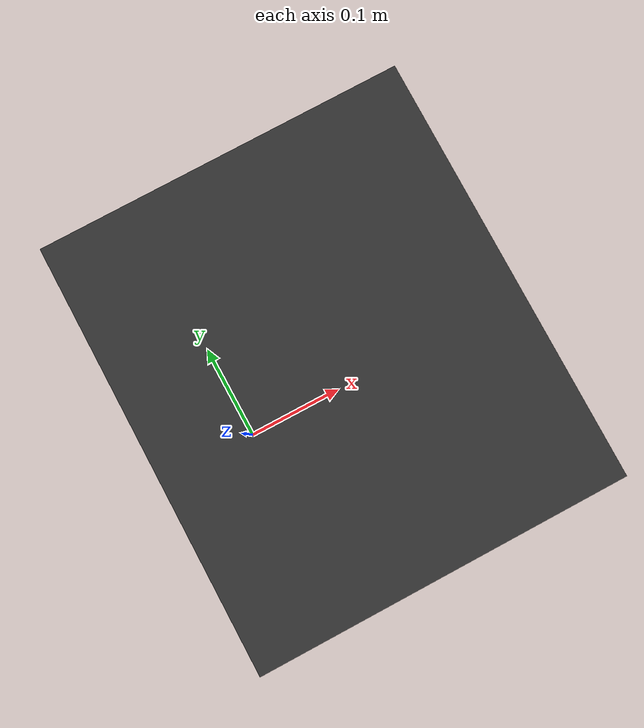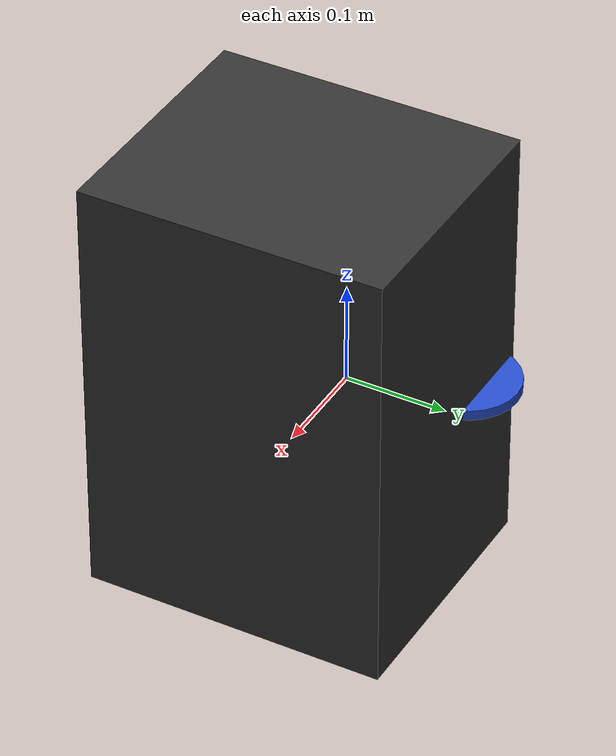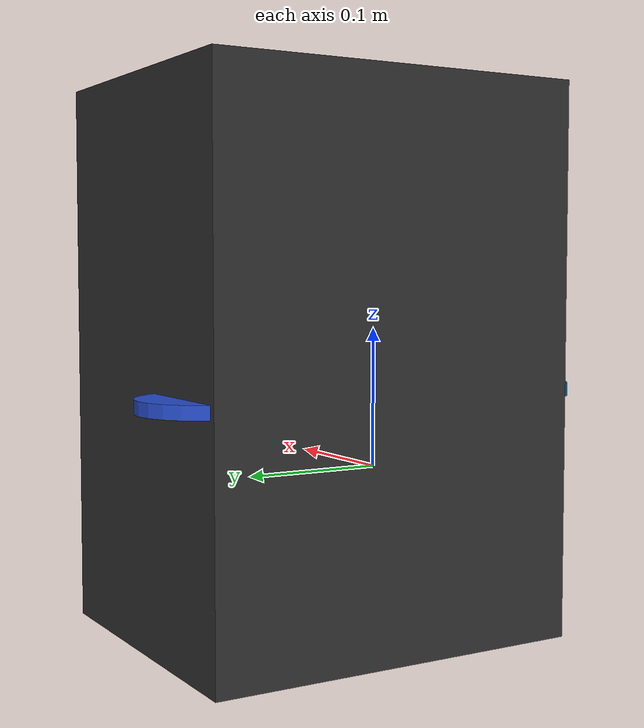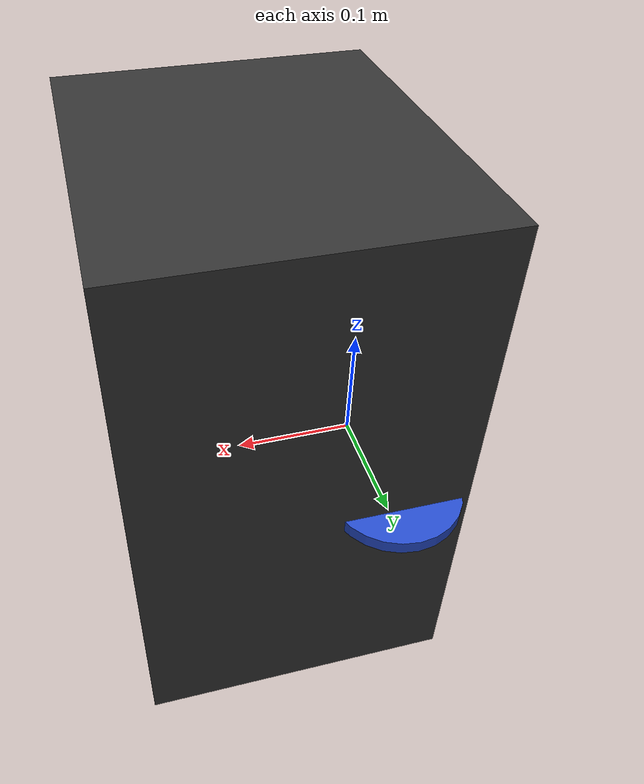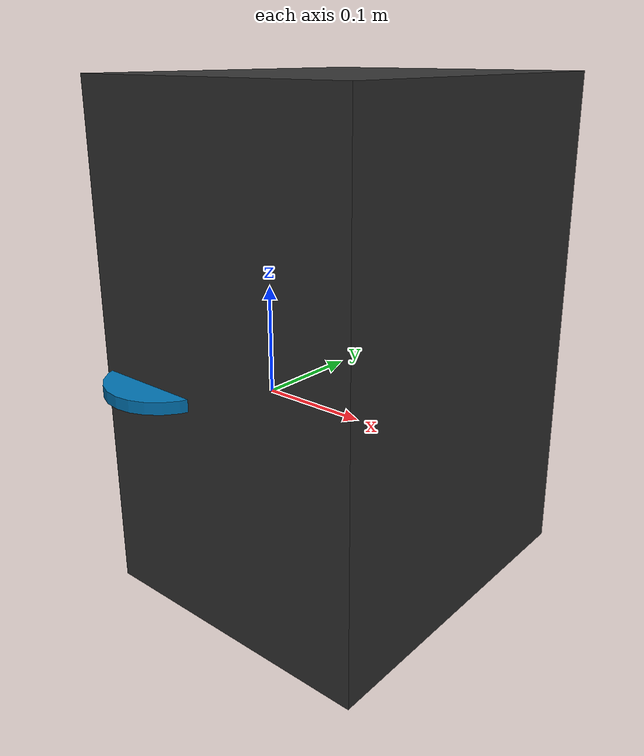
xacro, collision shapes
<?xml version="1.0"?>
<robot xmlns:xacro="http://www.ros.org/wiki/xacro" >

    <!-- Vehicle Geometries -->
    <xacro:property name="wheel_radius" value="0.05" />
    <xacro:property name="wheel_separation" value="0.253" />

    <xacro:include filename="inertial_macros.xacro"/>

    <material name="white">
        <color rgba="1 1 1 1" />
    </material>

    <material name="orange">
        <color rgba="1 0.3 0.1 1"/>
    </material>

    <material name="blue">
        <color rgba="0.2 0.2 1 1"/>
    </material>

    <material name="black">
        <color rgba="0 0 0 1"/>
    </material>

    <material name="grey">
        <color rgba="0.2 0.2 0.2 1.0"/>
    </material>

    <!-- BASE LINK -->

    <link name="base_link">
    </link>

    <!-- BASE_FOOTPRINT LINK-->
    <joint name="base_footprint_joint" type="fixed">
        <parent link="base_link"/>
        <child link="base_footprint"/>
        <origin xyz="0 0 0" rpy="0 0 0"/>
    </joint>

    <link name="base_footprint">
    </link>

    <!-- CHASSIS LINK -->

    <joint name="chassis_joint" type="fixed">
        <parent link="base_link"/>
        <child link="chassis"/>
        <origin xyz="0.0545 0.0 0.0723" rpy="1.57 0 1.57"/>
    </joint>
    <link name="chassis">
        <visual>
            <geometry>
                <mesh filename="package://sobot_drive/meshes/sobot_chassis.dae" scale="1 1 1"/>
            </geometry>
            <material name="grey"/>
        </visual>
        <collision>
            <origin xyz="0.0 0.0 0.03"/>
            <geometry>
                <box size="0.292 0.420 0.250"/>
            </geometry>
        </collision>
        <xacro:inertial_box mass="0.5" x="0.292" y="0.420" z="0.25">
            <origin xyz="-0.0 0.0 0.0" rpy="0 0 0"/>
        </xacro:inertial_box>
    </link>
        <gazebo reference="chassis">
        <material>Gazebo/Grey</material>
    </gazebo>

    <!-- LEFT WHEEL LINK -->
    <joint name="left_wheel_joint" type="continuous">
        <parent link="base_link"/>
        <child link="left_wheel"/>
        <origin xyz="0.0105  ${wheel_separation/2} 0.05" rpy="0 0 0" />
        <axis xyz="0 1 0"/>
    </joint>

    <link name="left_wheel">
        <visual>
                <origin xyz="0.0 0.0 0.0" rpy="-1.57 0 0" />
            <geometry>
                <mesh filename="package://sobot_drive/meshes/sobot_wheel.dae" scale="1 1 1"/> <!-- Colocar o arquivo STL-->
            </geometry>
        </visual>
        <collision>
            <geometry>
                <cylinder radius="${wheel_radius}" length="0.01"/>
            </geometry>
        </collision>
        <xacro:inertial_cylinder mass="0.1" length="0.01" radius="${wheel_radius}">
            <origin xyz="0 0 0" rpy="0 0 0"/>
        </xacro:inertial_cylinder>
    </link>
    <gazebo reference="left_wheel">
        <material>Gazebo/Blue</material>
    </gazebo>

    <!-- RIGHT WHEEL LINK -->
    <joint name="right_wheel_joint" type="continuous">
        <parent link="base_link"/>
        <child link="right_wheel"/>
        <origin xyz="0.0105 ${-wheel_separation/2} 0.05" rpy="0 0 0" />
        <axis xyz="0 1 0"/>
    </joint>

    <link name="right_wheel">
        <visual>
            <origin xyz="0 0 0" rpy="1.57 0 0" />
            <geometry>
                <mesh filename="package://sobot_drive/meshes/sobot_wheel.dae" scale="1 1 1"/> <!-- Colocar o arquivo STL-->
            </geometry>
        </visual>
        <collision>
            <geometry>
                <cylinder radius="${wheel_radius}" length="0.01"/>
            </geometry>
        </collision>
        <xacro:inertial_cylinder mass="0.1" length="0.01" radius="${wheel_radius}">
            <origin xyz="0 0 0" rpy="0 0 0"/>
        </xacro:inertial_cylinder>
    </link>
    <gazebo reference="right">
        <material>Gazebo/Blue</material>
    </gazebo>
</robot>
